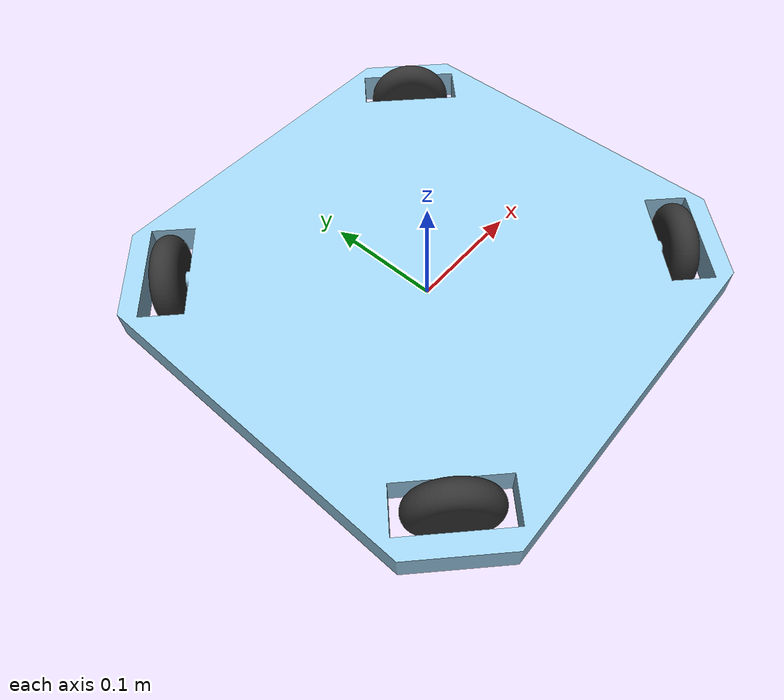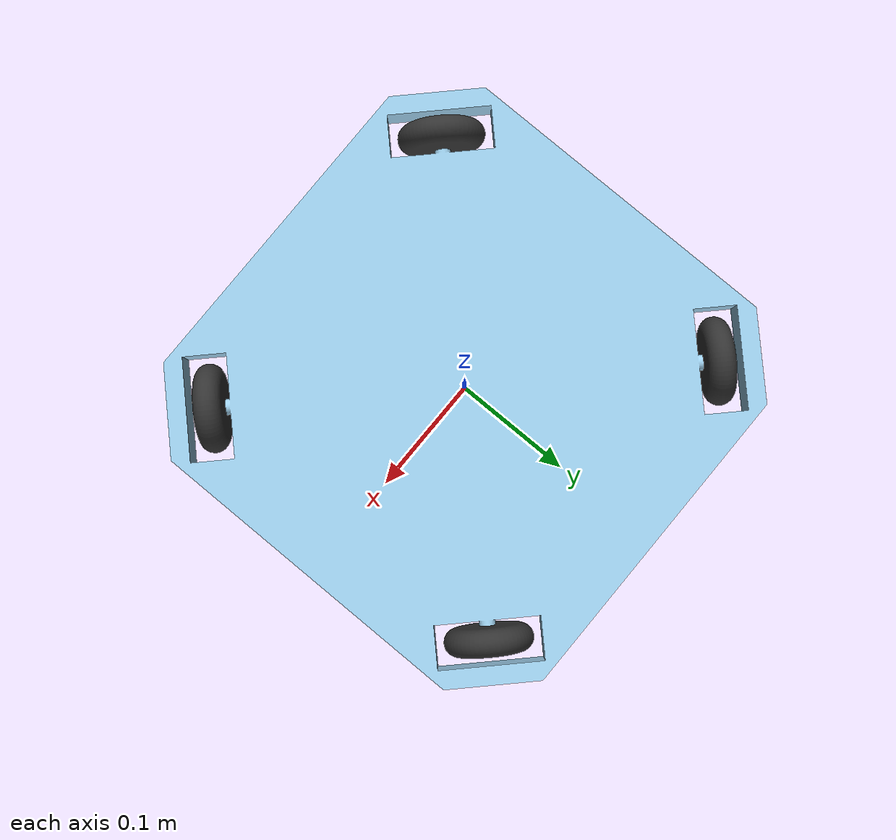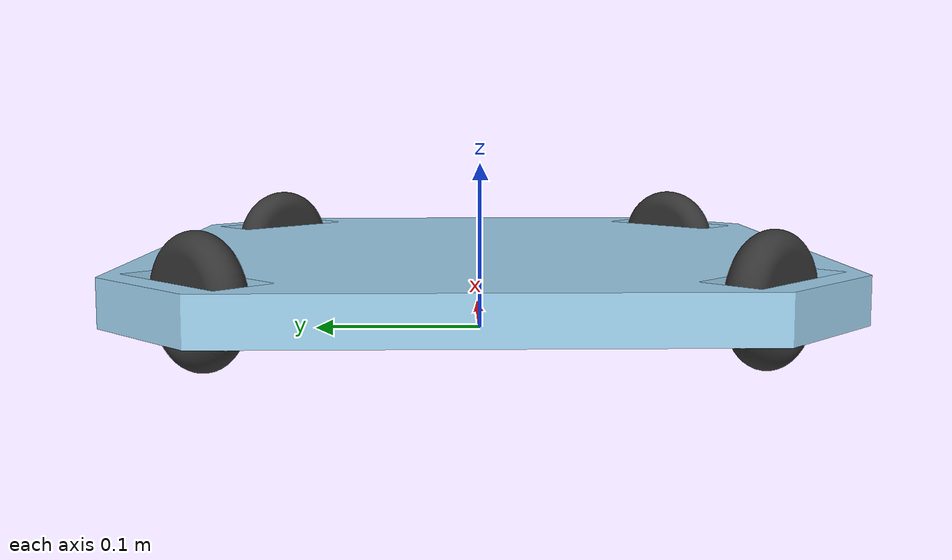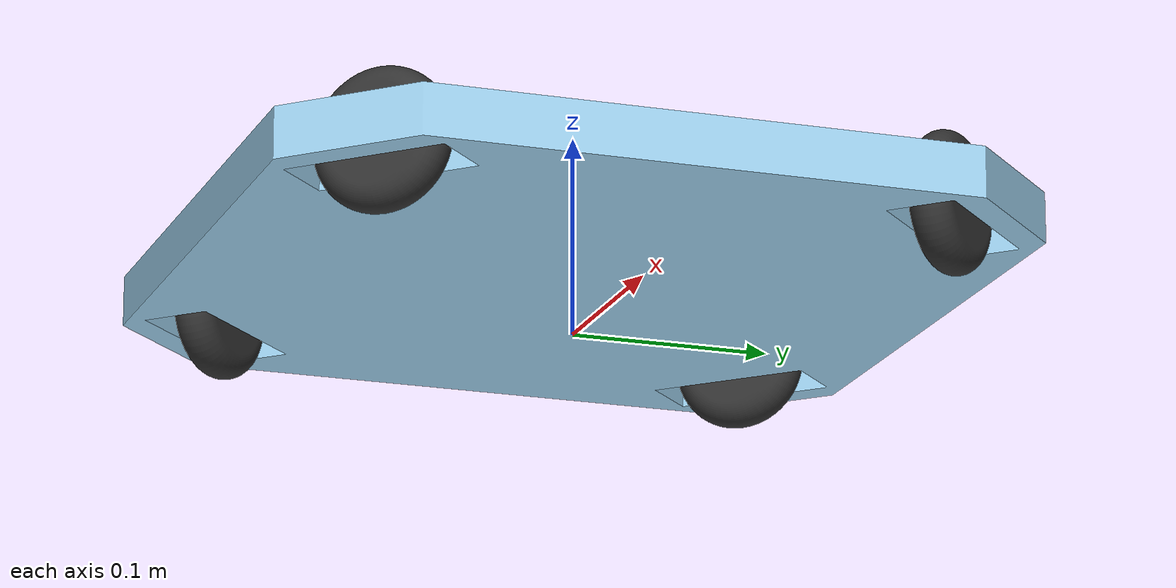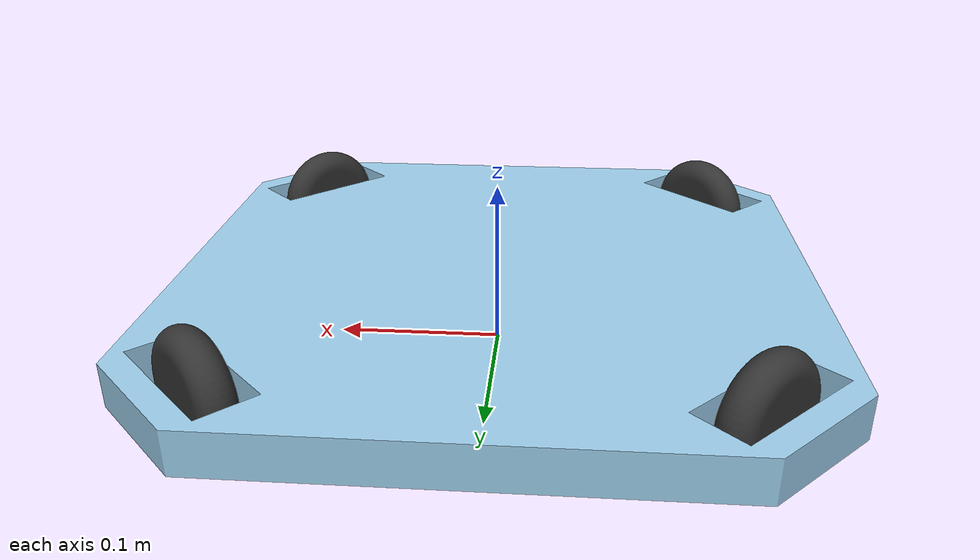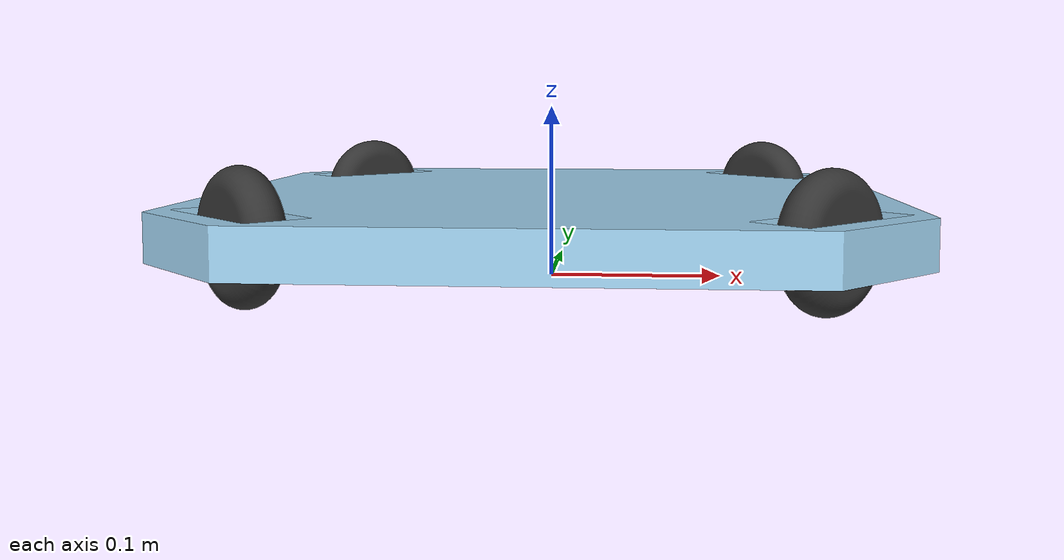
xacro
<?xml version='1.0'?>
<robot name="x_drive" xmlns:xacro="http://www.ros.org/wiki/xacro">

	<!-- properties-->
	<xacro:property name="stl_path" value="package://vex_robot/models"/>
	<xacro:property name="pi_4" value="0.7854"/>
	<xacro:property name="pi_2" value="1.5708"/>
	<xacro:property name="wheel_rot" value="3.69138"/>
	<xacro:property name="wheel_offs" value="0.14"/>
	<xacro:property name="wheel_rad" value="0.01375"/>

	<!--world link-->
	<link name='base_footprint'/>

	<!--chassis link-->
	<link name="base_link">
		<visual>
			<geometry>
				<mesh filename='${stl_path}/chassis.dae'/>
			</geometry>
		</visual>

		<collision>
			<geometry>
				<mesh filename='package://vex_robot/models/chassis.dae'/>
			</geometry>
			<material name="pink">
				<color rgba="237 72 154 1.0"/>
			</material>
		</collision>
		<inertial>
            <origin xyz="0 0 0" rpy="0 0 0"/>
            <mass value="8.789"/>
            <inertia
                ixx="144.802"
				ixy="0"
				ixz="0"
				iyx="0"
                iyy="144.802"
				iyz="0"
				izx="0"
				izy="0"
                izz="288.141"/>
        </inertial>
	</link>

	<!-- wheels -->
	<xacro:macro name="wheel_link" params="name">
		<link name="${name}">
			<visual>
				<geometry>
					<mesh filename='package://vex_robot/models/wheel.stl'/>
				</geometry>
				<material name="dark_grey">
					<color rgba="0.2 0.2 0.2 1.0"/>
				</material>
			</visual>

			<collision>
				<geometry>
					<mesh filename='package://vex_robot/models/wheel.stl'/>
				</geometry>
			</collision>

			<inertial>
            	<origin xyz="0 0 0" rpy="0 0 0"/>
            	<mass value="0.076"/>
				<inertia
					ixx="0.055"
					ixy="0"
					ixz="0"
					iyx="0"
					iyy="0.0988"
					iyz="0"
					izx="0"
					izy="0"
					izz="0.055"/>
        	</inertial>
		</link>
	</xacro:macro>

	<xacro:wheel_link name="wheel_a"/>
	<xacro:wheel_link name="wheel_b"/>
	<xacro:wheel_link name="wheel_c"/>
	<xacro:wheel_link name="wheel_d"/>

	<!-- joints-->
	<joint name="world_2_chassis" type='fixed'>
		<origin xyz="0 0 0.025" rpy="0 0 0"/>
		<parent link='base_footprint'/>
		<child link='base_link'/>
	</joint>

	<joint name="chassis_to_wheel_a" type="continuous">
        <origin xyz="-${wheel_offs} ${wheel_offs} ${wheel_rad}" rpy="0 0 ${pi_4}"/>
        <parent link="base_link"/>
        <child link="wheel_a"/>
    </joint>

	<joint name="chassis_to_wheel_b" type="continuous">
        <origin xyz="${wheel_offs} -${wheel_offs} ${wheel_rad}" rpy="0 0 ${pi_4}"/>
        <parent link="base_link"/>
        <child link="wheel_b"/>
    </joint>

	<joint name="chassis_to_wheel_c" type="continuous">
        <origin xyz="${wheel_offs} ${wheel_offs} ${wheel_rad}" rpy="0 0 -${pi_4}"/>
        <parent link="base_link"/>
        <child link="wheel_c"/>
    </joint>

	<joint name="chassis_to_wheel_d" type="continuous">
        <origin xyz="-${wheel_offs} -${wheel_offs} ${wheel_rad}" rpy="0 0 -${pi_4}"/>
        <parent link="base_link"/>
        <child link="wheel_d"/>
    </joint>

	<ros2_control name="x_drive_controller" type="system">
	    <hardware>
            <plugin>mock_components/GenericSystem</plugin>
            <param name="mock_sensor_commands">false</param>
            <param name="state_following_offset">0.0</param>
        </hardware>
		<joint name="chassis_to_wheel_a">
   			<command_interface name="velocity"/>
			<state_interface name="velocity"/>
   			<state_interface name="position"/>
 		</joint>
		<joint name="chassis_to_wheel_b">
   			<command_interface name="velocity"/>
			<state_interface name="velocity"/>
   			<state_interface name="position"/>
 		</joint>
		<joint name="chassis_to_wheel_c">
   			<command_interface name="velocity"/>
			<state_interface name="velocity"/>
   			<state_interface name="position"/>
 		</joint>
		<joint name="chassis_to_wheel_d">
   			<command_interface name="velocity"/>
			<state_interface name="velocity"/>
   			<state_interface name="position"/>
 		</joint>
	</ros2_control>

	<gazebo>
  		<plugin filename="ros2_control-system.so" name="gz_ros2_control::GazeboSimROS2ControlPlugin">
    		<parameters>package://vex_robot/config/omni_wheel_params.yaml</parameters>
			<controller_manager_prefix_node_name>controller_manager</controller_manager_prefix_node_name>
  		</plugin>
	</gazebo>
</robot>
